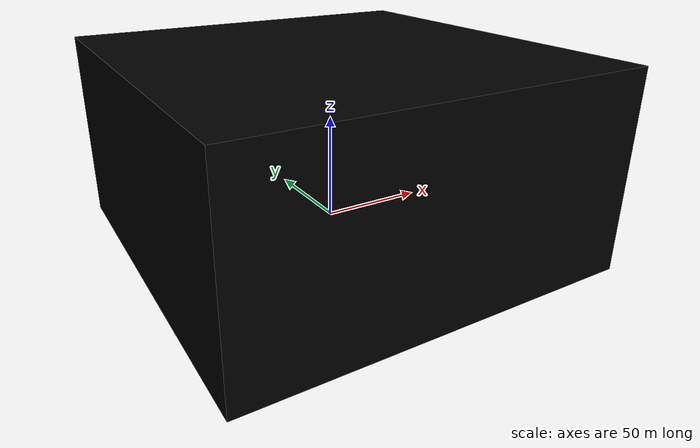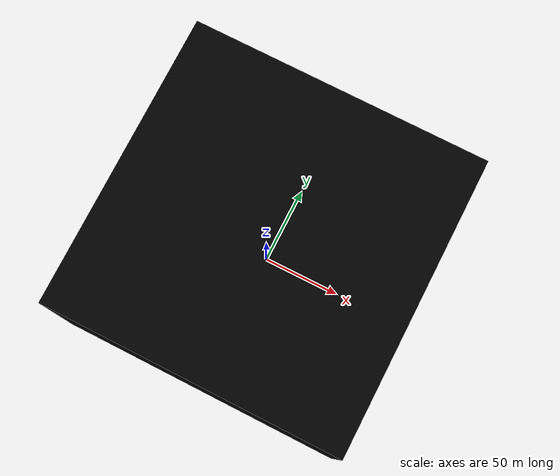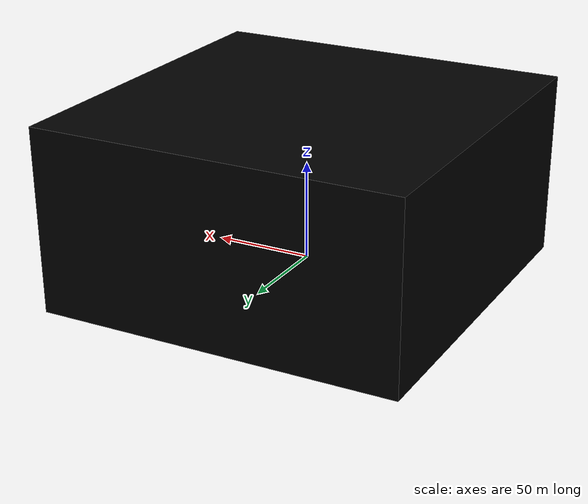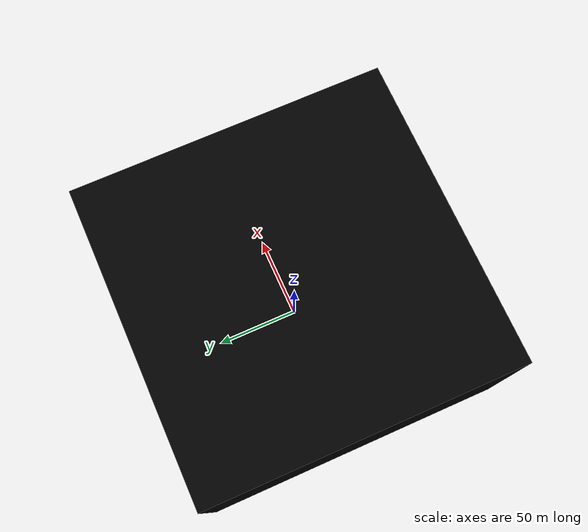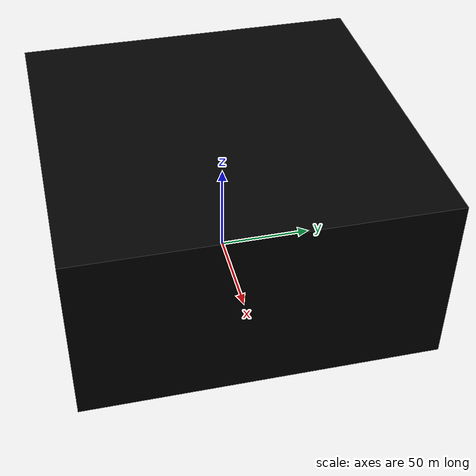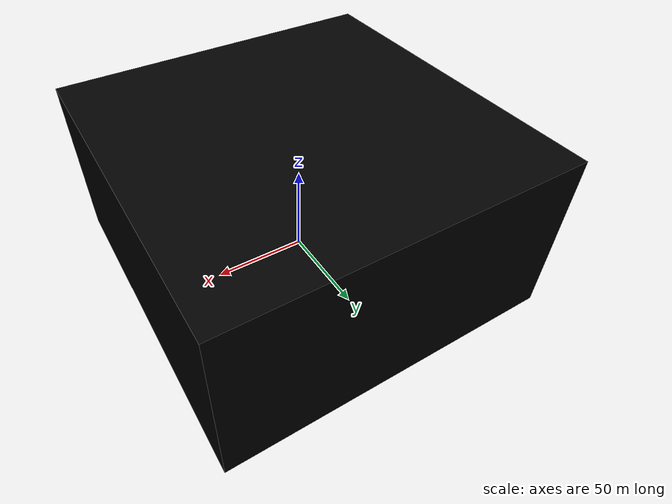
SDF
<?xml version="1.0" ?>
<sdf version='1.9'>
  <world name='lunar_landscape'>

    <scene>
        <ambient>0.4 0.4 0.4 0.4</ambient>          <!-- Has no effect -->
        <background>0.0 0.0 0.0 1.0</background>    <!-- Has no effect -->
        <shadows>1</shadows>                        <!-- Has no effect -->
        <grid>0</grid>
    </scene>

    <!-- Gravity -->
    <!-- Lowers friction and makes robot turn less good -->

    <!-- Physics -->
    <physics name="1ms" type="ignored">
        <max_step_size>0.001</max_step_size>
        <real_time_factor>1.0</real_time_factor>
    </physics>

    <!-- Plugins -->
    <plugin
        filename="gz-sim-physics-system"
        name="gz::sim::systems::Physics">
    </plugin>
    <!-- Allows to use the 'Create" service' -->
    <plugin
        filename="gz-sim-user-commands-system"
        name="gz::sim::systems::UserCommands">
    </plugin>
    <plugin
        filename="gz-sim-scene-broadcaster-system"
        name="gz::sim::systems::SceneBroadcaster">
    </plugin>

    <plugin filename="gz-sim-imu-system"
        name="gz::sim::systems::Imu">
    </plugin>

    <plugin
        filename="gz-sim-sensors-system"
        name="gz::sim::systems::Sensors">
        <render_engine>ogre2</render_engine>
    </plugin>

    <!-- Illumination -->
    <light type="directional" name="sun">
      <cast_shadows>true</cast_shadows>
      <pose>0 0 10 0.9 0 0</pose>
      <diffuse>0.8 0.8 0.8 1</diffuse>
      <specular>0.2 0.2 0.2 1</specular>
      <attenuation>
        <range>1000</range>
        <constant>0.9</constant>
        <linear>0.01</linear>
        <quadratic>0.001</quadratic>
      </attenuation>
      <direction>-0.3 0.3 -0.9</direction>
    </light>

    <!-- Models -->

    <!-- Ground -->
    <model name="lunar_ground_plane">
      <static>true</static>
      <pose>-35 5 -0.7 0 0 0</pose>
      <link name='lunar_ground_plane'>
        <collision name="lunar_ground_plane_collision">
            <pose>0 0 0 0 0 0</pose>
            <geometry>
            <mesh>
                <scale>1 1 1</scale>
                <uri>../environment_models/lunar_proto_landscape_v002_flattened.dae</uri>
            </mesh>
            </geometry>
        </collision>
        <visual name='lunar_ground_plane_visual'>
            <pose>0 0 0 0 0 0</pose>
            <geometry>
            <mesh>
                <scale>1 1 1</scale>
                <uri>../environment_models/lunar_proto_landscape_v002_flattened.dae</uri>
            </mesh>
            </geometry>
        </visual>
      </link>
    </model>

    <!-- Sky -->
    <model name="black_sky">
      <static>true</static>
      <pose>0 0 -12.0 0 0 0</pose>
      <link name='black_sky_link'>
        <visual name='black_sky_visual'>
            <pose>0 0 0 0 0 0</pose>
            <geometry>
            <mesh>
                <scale>1 1 1</scale>
                <uri>../environment_models/black_sky.dae</uri>
            </mesh>
            </geometry>
        </visual>
      </link>
    </model>

    <!-- Robot -->

  </world>
</sdf>
